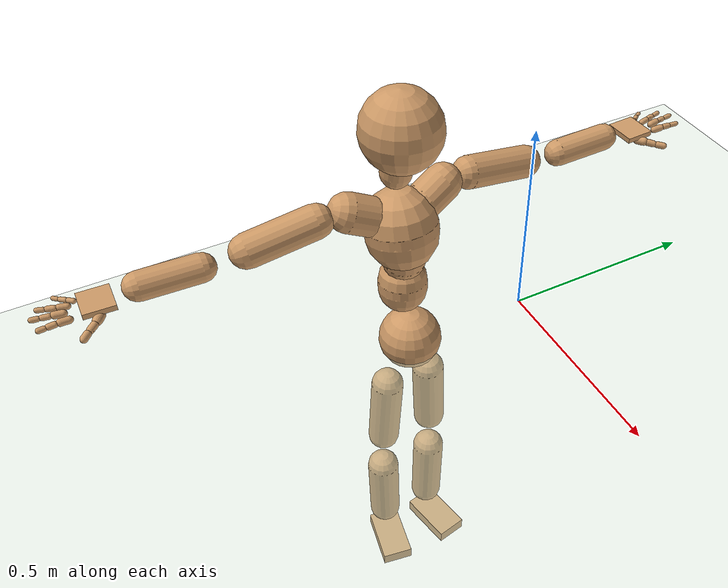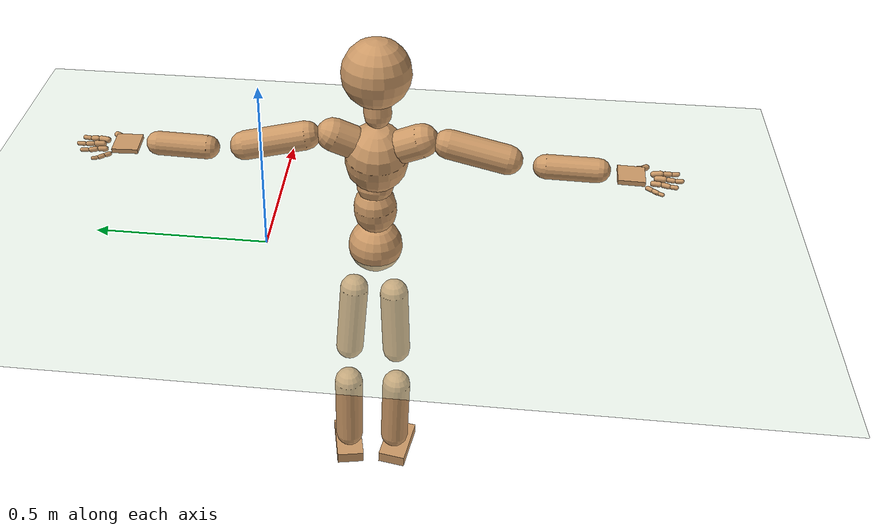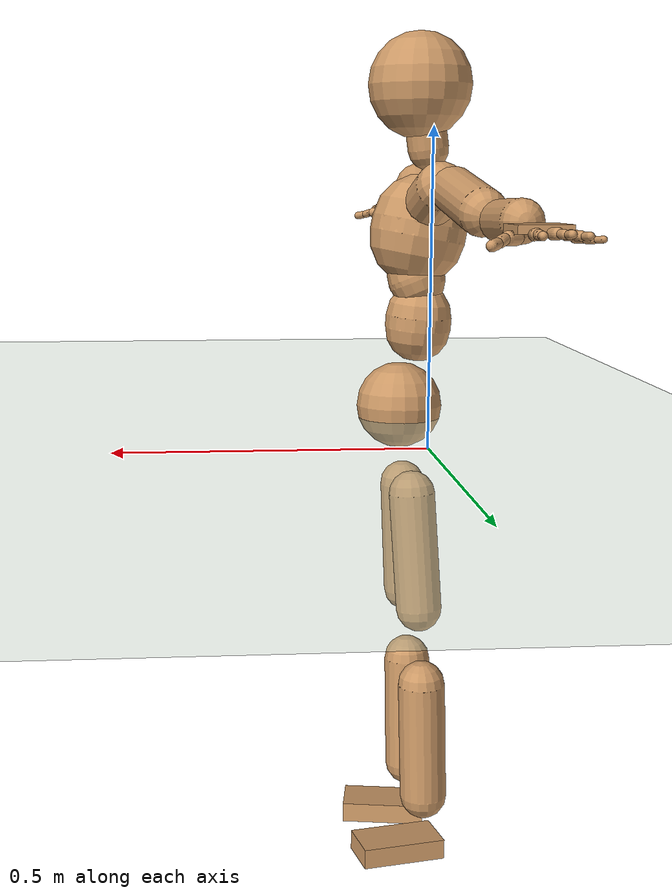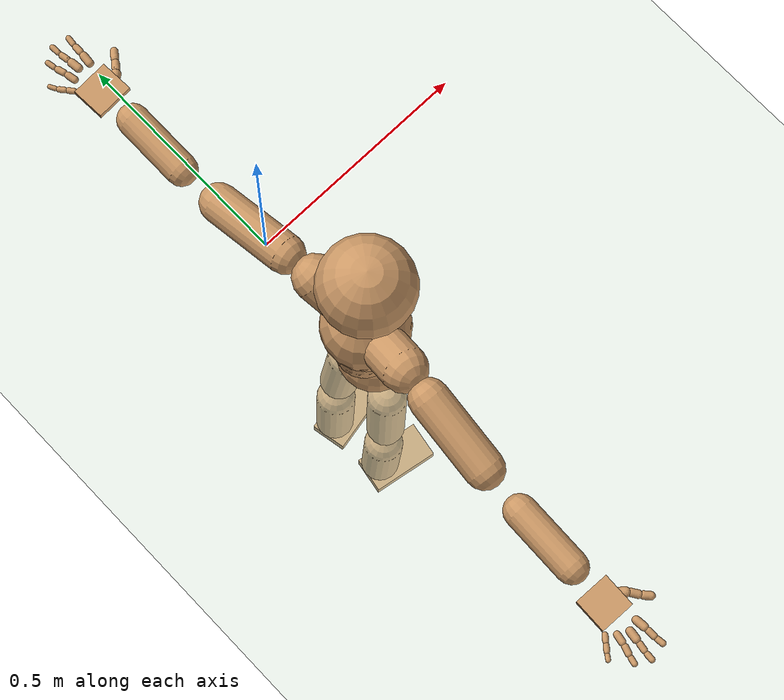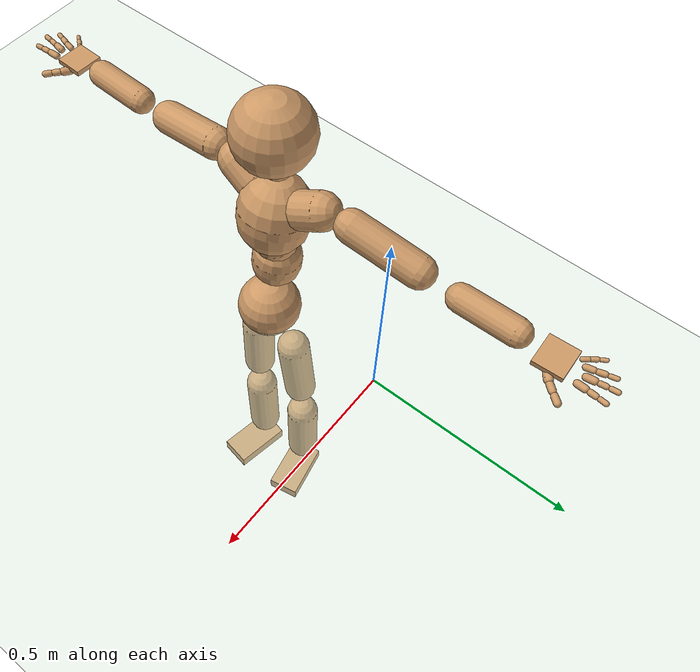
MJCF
<mujoco model="humanoid">
  <compiler coordinate="local" angle="radian"/>
  <default>
    <joint damping="0.0" armature="0.01" stiffness="0.0" limited="true"/>
    <geom conaffinity="1" condim="3" contype="7" margin="0.001" rgba="0.8 0.6 .4 1"/>
  </default>
  <asset>
    <texture type="skybox" builtin="gradient" rgb1=".4 .5 .6" rgb2="0 0 0" width="100" height="100"/>
    <texture builtin="flat" height="1278" mark="cross" markrgb="1 1 1" name="texgeom" random="0.01" rgb1="0.8 0.6 0.4" rgb2="0.8 0.6 0.4" type="cube" width="127"/>
    <texture builtin="checker" height="100" name="texplane" rgb1="0 0 0" rgb2="0.8 0.8 0.8" type="2d" width="100"/>
    <material name="MatPlane" reflectance="0.5" shininess="1" specular="1" texrepeat="60 60" texture="texplane"/>
    <material name="geom" texture="texgeom" texuniform="true"/>
  </asset>
  <worldbody>
    <light cutoff="100" diffuse="1 1 1" dir="-0 0 -1.3" directional="true" exponent="1" pos="0 0 1.3" specular=".1 .1 .1"/>
    <geom conaffinity="1" condim="3" name="floor" pos="0 0 0" rgba="0.8 0.9 0.8 1" size="100 100 .2" type="plane" material="MatPlane"/>
    <body name="Pelvis" pos="-0.0003 -0.3138 0.0203">
      <freejoint name="Pelvis"/>
      <geom type="sphere" contype="1" conaffinity="1" density="500" size="0.0767" pos="0.0000 0.0000 0.0000" name="Pelvis"/>
      <body name="L_Hip" pos="-0.0119 0.0552 -0.081">
        <joint name="L_Hip_x" type="hinge" pos="0 0 0" axis="1 0 0" stiffness="800" damping="80" armature="0.02" range="-180.0000 180.0000"/>
        <joint name="L_Hip_y" type="hinge" pos="0 0 0" axis="0 1 0" stiffness="800" damping="80" armature="0.02" range="-180.0000 180.0000"/>
        <joint name="L_Hip_z" type="hinge" pos="0 0 0" axis="0 0 1" stiffness="800" damping="80" armature="0.02" range="-180.0000 180.0000"/>
        <geom type="capsule" contype="1" conaffinity="1" density="500" fromto="-0.0048 0.0037 -0.0707 -0.0191 0.0149 -0.2826" size="0.0409" name="L_Hip"/>
        <body name="L_Knee" pos="-0.0238 0.0186 -0.3533">
          <joint name="L_Knee_x" type="hinge" pos="0 0 0" axis="1 0 0" stiffness="800" damping="80" armature="0.02" range="-180.0000 180.0000"/>
          <joint name="L_Knee_y" type="hinge" pos="0 0 0" axis="0 1 0" stiffness="800" damping="80" armature="0.02" range="-180.0000 180.0000"/>
          <joint name="L_Knee_z" type="hinge" pos="0 0 0" axis="0 0 1" stiffness="800" damping="80" armature="0.02" range="-180.0000 180.0000"/>
          <geom type="capsule" contype="1" conaffinity="1" density="500" fromto="-0.0025 -0.0012 -0.0731 -0.0099 -0.0046 -0.2924" size="0.0427" name="L_Knee"/>
          <body name="L_Ankle" pos="-0.0124 -0.0058 -0.3655">
            <joint name="L_Ankle_x" type="hinge" pos="0 0 0" axis="1 0 0" stiffness="800" damping="80" armature="0.02" range="-180.0000 180.0000"/>
            <joint name="L_Ankle_y" type="hinge" pos="0 0 0" axis="0 1 0" stiffness="800" damping="80" armature="0.02" range="-180.0000 180.0000"/>
            <joint name="L_Ankle_z" type="hinge" pos="0 0 0" axis="0 0 1" stiffness="800" damping="80" armature="0.02" range="-180.0000 180.0000"/>
            <geom type="box" contype="1" conaffinity="1" density="500" pos="0.0506 0.0099 -0.0210" size="0.0772 0.0418 0.0182" quat="0.9953 0.0000 0.0000 0.0970" name="L_Ankle"/>
            <body name="L_Toe" pos="0.1011 0.0199 -0.042">
              <joint name="L_Toe_x" type="hinge" pos="0 0 0" axis="1 0 0" stiffness="500" damping="50" armature="0.02" range="-180.0000 180.0000"/>
              <joint name="L_Toe_y" type="hinge" pos="0 0 0" axis="0 1 0" stiffness="500" damping="50" armature="0.02" range="-180.0000 180.0000"/>
              <joint name="L_Toe_z" type="hinge" pos="0 0 0" axis="0 0 1" stiffness="500" damping="50" armature="0.02" range="-180.0000 180.0000"/>
              <geom type="box" contype="1" conaffinity="1" density="500" pos="0.0000 0.0000 0.0221" size="0.0008 0.0021 0.001" quat="0.9945 0.0000 0.0000 0.1044" name="L_Toe"/>
            </body>
          </body>
        </body>
      </body>
      <body name="R_Hip" pos="-0.0137 -0.0534 -0.0875">
        <joint name="R_Hip_x" type="hinge" pos="0 0 0" axis="1 0 0" stiffness="800" damping="80" armature="0.02" range="-180.0000 180.0000"/>
        <joint name="R_Hip_y" type="hinge" pos="0 0 0" axis="0 1 0" stiffness="800" damping="80" armature="0.02" range="-180.0000 180.0000"/>
        <joint name="R_Hip_z" type="hinge" pos="0 0 0" axis="0 0 1" stiffness="800" damping="80" armature="0.02" range="-180.0000 180.0000"/>
        <geom type="capsule" contype="1" conaffinity="1" density="500" fromto="-0.0037 -0.0043 -0.0698 -0.0149 -0.0171 -0.2791" size="0.0406" name="R_Hip"/>
        <body name="R_Knee" pos="-0.0187 -0.0214 -0.3489">
          <joint name="R_Knee_x" type="hinge" pos="0 0 0" axis="1 0 0" stiffness="800" damping="80" armature="0.02" range="-180.0000 180.0000"/>
          <joint name="R_Knee_y" type="hinge" pos="0 0 0" axis="0 1 0" stiffness="800" damping="80" armature="0.02" range="-180.0000 180.0000"/>
          <joint name="R_Knee_z" type="hinge" pos="0 0 0" axis="0 0 1" stiffness="800" damping="80" armature="0.02" range="-180.0000 180.0000"/>
          <geom type="capsule" contype="1" conaffinity="1" density="500" fromto="-0.0016 0.0003 -0.0715 -0.0063 0.0013 -0.2859" size="0.0427" name="R_Knee"/>
          <body name="R_Ankle" pos="-0.0079 0.0017 -0.3574">
            <joint name="R_Ankle_x" type="hinge" pos="0 0 0" axis="1 0 0" stiffness="800" damping="80" armature="0.02" range="-180.0000 180.0000"/>
            <joint name="R_Ankle_y" type="hinge" pos="0 0 0" axis="0 1 0" stiffness="800" damping="80" armature="0.02" range="-180.0000 180.0000"/>
            <joint name="R_Ankle_z" type="hinge" pos="0 0 0" axis="0 0 1" stiffness="800" damping="80" armature="0.02" range="-180.0000 180.0000"/>
            <geom type="box" contype="1" conaffinity="1" density="500" pos="0.0475 -0.0082 -0.0230" size="0.0772 0.0418 0.0182" quat="0.9964 0.0000 0.0000 -0.0853" name="R_Ankle"/>
            <body name="R_Toe" pos="0.095 -0.0164 -0.046">
              <joint name="R_Toe_x" type="hinge" pos="0 0 0" axis="1 0 0" stiffness="500" damping="50" armature="0.02" range="-180.0000 180.0000"/>
              <joint name="R_Toe_y" type="hinge" pos="0 0 0" axis="0 1 0" stiffness="500" damping="50" armature="0.02" range="-180.0000 180.0000"/>
              <joint name="R_Toe_z" type="hinge" pos="0 0 0" axis="0 0 1" stiffness="500" damping="50" armature="0.02" range="-180.0000 180.0000"/>
              <geom type="box" contype="1" conaffinity="1" density="500" pos="0.0000 0.0000 0.0241" size="0.0008 0.0021 0.001" quat="0.9973 0.0000 0.0000 -0.0736" name="R_Toe"/>
            </body>
          </body>
        </body>
      </body>
      <body name="Torso" pos="-0.0287 -0.0041 0.0903">
        <joint name="Torso_x" type="hinge" pos="0 0 0" axis="1 0 0" stiffness="1000" damping="100" armature="0.02" range="-180.0000 180.0000"/>
        <joint name="Torso_y" type="hinge" pos="0 0 0" axis="0 1 0" stiffness="1000" damping="100" armature="0.02" range="-180.0000 180.0000"/>
        <joint name="Torso_z" type="hinge" pos="0 0 0" axis="0 0 1" stiffness="1000" damping="100" armature="0.02" range="-180.0000 180.0000"/>
        <geom type="capsule" contype="1" conaffinity="1" density="500" fromto="-0.0045 0.0042 0.0700 -0.0030 0.0028 0.0467" size="0.0585" name="Torso"/>
        <body name="Spine" pos="-0.0075 0.007 0.1167">
          <joint name="Spine_x" type="hinge" pos="0 0 0" axis="1 0 0" stiffness="1000" damping="100" armature="0.02" range="-180.0000 180.0000"/>
          <joint name="Spine_y" type="hinge" pos="0 0 0" axis="0 1 0" stiffness="1000" damping="100" armature="0.02" range="-180.0000 180.0000"/>
          <joint name="Spine_z" type="hinge" pos="0 0 0" axis="0 0 1" stiffness="1000" damping="100" armature="0.02" range="-180.0000 180.0000"/>
          <geom type="capsule" contype="1" conaffinity="1" density="500" fromto="0.0105 -0.0020 0.0255 0.0070 -0.0013 0.0170" size="0.0508" name="Spine"/>
          <body name="Chest" pos="0.0175 -0.0033 0.0424">
            <joint name="Chest_x" type="hinge" pos="0 0 0" axis="1 0 0" stiffness="1000" damping="100" armature="0.02" range="-180.0000 180.0000"/>
            <joint name="Chest_y" type="hinge" pos="0 0 0" axis="0 1 0" stiffness="1000" damping="100" armature="0.02" range="-180.0000 180.0000"/>
            <joint name="Chest_z" type="hinge" pos="0 0 0" axis="0 0 1" stiffness="1000" damping="100" armature="0.02" range="-180.0000 180.0000"/>
            <geom type="capsule" contype="1" conaffinity="1" density="500" fromto="-0.0144 -0.0014 0.0753 -0.0096 -0.0010 0.0502" size="0.0846" name="Chest"/>
            <body name="Neck" pos="-0.0314 -0.005 0.174">
              <joint name="Neck_x" type="hinge" pos="0 0 0" axis="1 0 0" stiffness="500" damping="50" armature="0.02" range="-180.0000 180.0000"/>
              <joint name="Neck_y" type="hinge" pos="0 0 0" axis="0 1 0" stiffness="500" damping="50" armature="0.02" range="-180.0000 180.0000"/>
              <joint name="Neck_z" type="hinge" pos="0 0 0" axis="0 0 1" stiffness="500" damping="50" armature="0.02" range="-180.0000 180.0000"/>
              <geom type="capsule" contype="1" conaffinity="1" density="500" fromto="0.0043 0.0016 0.0271 0.0172 0.0065 0.1083" size="0.0362" name="Neck"/>
              <body name="Head" pos="0.0215 0.0081 0.1353">
                <joint name="Head_x" type="hinge" pos="0 0 0" axis="1 0 0" stiffness="500" damping="50" armature="0.02" range="-180.0000 180.0000"/>
                <joint name="Head_y" type="hinge" pos="0 0 0" axis="0 1 0" stiffness="500" damping="50" armature="0.02" range="-180.0000 180.0000"/>
                <joint name="Head_z" type="hinge" pos="0 0 0" axis="0 0 1" stiffness="500" damping="50" armature="0.02" range="-180.0000 180.0000"/>
                <geom type="sphere" contype="1" conaffinity="1" density="500" size="0.0910" pos="0.0000 0.0000 0.0000" name="Head"/>
              </body>
            </body>
            <body name="L_Thorax" pos="-0.0176 0.0466 0.1027">
              <joint name="L_Thorax_x" type="hinge" pos="0 0 0" axis="1 0 0" stiffness="500" damping="50" armature="0.02" range="-180.0000 180.0000"/>
              <joint name="L_Thorax_y" type="hinge" pos="0 0 0" axis="0 1 0" stiffness="500" damping="50" armature="0.02" range="-180.0000 180.0000"/>
              <joint name="L_Thorax_z" type="hinge" pos="0 0 0" axis="0 0 1" stiffness="500" damping="50" armature="0.02" range="-180.0000 180.0000"/>
              <geom type="capsule" contype="1" conaffinity="1" density="500" fromto="-0.0032 0.0162 0.0082 -0.0127 0.0650 0.0327" size="0.044" name="L_Thorax"/>
              <body name="L_Shoulder" pos="-0.0159 0.0812 0.0409">
                <joint name="L_Shoulder_x" type="hinge" pos="0 0 0" axis="1 0 0" stiffness="500" damping="50" armature="0.02" range="-180.0000 180.0000"/>
                <joint name="L_Shoulder_y" type="hinge" pos="0 0 0" axis="0 1 0" stiffness="500" damping="50" armature="0.02" range="-180.0000 180.0000"/>
                <joint name="L_Shoulder_z" type="hinge" pos="0 0 0" axis="0 0 1" stiffness="500" damping="50" armature="0.02" range="-180.0000 180.0000"/>
                <geom type="capsule" contype="1" conaffinity="1" density="500" fromto="-0.0052 0.0535 -0.0107 -0.0206 0.2141 -0.0430" size="0.0382" name="L_Shoulder"/>
                <body name="L_Elbow" pos="-0.0258 0.2676 -0.0537">
                  <joint name="L_Elbow_x" type="hinge" pos="0 0 0" axis="1 0 0" stiffness="500" damping="50" armature="0.02" range="-720.0000 720.0000"/>
                  <joint name="L_Elbow_y" type="hinge" pos="0 0 0" axis="0 1 0" stiffness="500" damping="50" armature="0.02" range="-720.0000 720.0000"/>
                  <joint name="L_Elbow_z" type="hinge" pos="0 0 0" axis="0 0 1" stiffness="500" damping="50" armature="0.02" range="-720.0000 720.0000"/>
                  <geom type="capsule" contype="1" conaffinity="1" density="500" fromto="0.0000 0.0439 0.0011 0.0000 0.1757 0.0045" size="0.0314" name="L_Elbow"/>
                  <body name="L_Wrist" pos="0 0.2196 0.0056">
                    <joint name="L_Wrist_x" type="hinge" pos="0 0 0" axis="1 0 0" stiffness="300" damping="30" armature="0.02" range="-180.0000 180.0000"/>
                    <joint name="L_Wrist_y" type="hinge" pos="0 0 0" axis="0 1 0" stiffness="300" damping="30" armature="0.02" range="-180.0000 180.0000"/>
                    <joint name="L_Wrist_z" type="hinge" pos="0 0 0" axis="0 0 1" stiffness="300" damping="30" armature="0.02" range="-180.0000 180.0000"/>
                    <geom type="box" contype="1" conaffinity="1" density="500" pos="-0.0020 0.0399 -0.0080" size="0.0342 0.038 0.0061" quat="0.7249 0.0000 0.0000 -0.6889" name="L_Wrist"/>
                    <body name="L_Index1" pos="0.0179 0.0935 -0.014">
                      <joint name="L_Index1_x" type="hinge" pos="0 0 0" axis="1 0 0" stiffness="100" damping="10" armature="0.02" range="-180.0000 180.0000"/>
                      <joint name="L_Index1_y" type="hinge" pos="0 0 0" axis="0 1 0" stiffness="100" damping="10" armature="0.02" range="-180.0000 180.0000"/>
                      <joint name="L_Index1_z" type="hinge" pos="0 0 0" axis="0 0 1" stiffness="100" damping="10" armature="0.02" range="-180.0000 180.0000"/>
                      <geom type="capsule" contype="1" conaffinity="1" density="500" fromto="0.0005 0.0059 0.0005 0.0020 0.0237 0.0019" size="0.008" name="L_Index1"/>
                      <body name="L_Index2" pos="0.0025 0.0297 0.0024">
                        <joint name="L_Index2_x" type="hinge" pos="0 0 0" axis="1 0 0" stiffness="100" damping="10" armature="0.02" range="-180.0000 180.0000"/>
                        <joint name="L_Index2_y" type="hinge" pos="0 0 0" axis="0 1 0" stiffness="100" damping="10" armature="0.02" range="-180.0000 180.0000"/>
                        <joint name="L_Index2_z" type="hinge" pos="0 0 0" axis="0 0 1" stiffness="100" damping="10" armature="0.02" range="-180.0000 180.0000"/>
                        <geom type="capsule" contype="1" conaffinity="1" density="500" fromto="0.0001 0.0042 -0.0003 0.0004 0.0169 -0.0011" size="0.0067" name="L_Index2"/>
                        <body name="L_Index3" pos="0.0005 0.0211 -0.0013">
                          <joint name="L_Index3_x" type="hinge" pos="0 0 0" axis="1 0 0" stiffness="100" damping="10" armature="0.02" range="-180.0000 180.0000"/>
                          <joint name="L_Index3_y" type="hinge" pos="0 0 0" axis="0 1 0" stiffness="100" damping="10" armature="0.02" range="-180.0000 180.0000"/>
                          <joint name="L_Index3_z" type="hinge" pos="0 0 0" axis="0 0 1" stiffness="100" damping="10" armature="0.02" range="-180.0000 180.0000"/>
                          <geom type="capsule" contype="1" conaffinity="1" density="500" fromto="0.0005 0.0046 0.0001 0.0020 0.0185 0.0005" size="0.0057" name="L_Index3"/>
                        </body>
                      </body>
                    </body>
                    <body name="L_Middle1" pos="-0.0026 0.1 -0.0122">
                      <joint name="L_Middle1_x" type="hinge" pos="0 0 0" axis="1 0 0" stiffness="100" damping="10" armature="0.02" range="-180.0000 180.0000"/>
                      <joint name="L_Middle1_y" type="hinge" pos="0 0 0" axis="0 1 0" stiffness="100" damping="10" armature="0.02" range="-180.0000 180.0000"/>
                      <joint name="L_Middle1_z" type="hinge" pos="0 0 0" axis="0 0 1" stiffness="100" damping="10" armature="0.02" range="-180.0000 180.0000"/>
                      <geom type="capsule" contype="1" conaffinity="1" density="500" fromto="-0.0008 0.0056 0.0002 -0.0031 0.0225 0.0009" size="0.0081" name="L_Middle1"/>
                      <body name="L_Middle2" pos="-0.0038 0.0281 0.0011">
                        <joint name="L_Middle2_x" type="hinge" pos="0 0 0" axis="1 0 0" stiffness="100" damping="10" armature="0.02" range="-180.0000 180.0000"/>
                        <joint name="L_Middle2_y" type="hinge" pos="0 0 0" axis="0 1 0" stiffness="100" damping="10" armature="0.02" range="-180.0000 180.0000"/>
                        <joint name="L_Middle2_z" type="hinge" pos="0 0 0" axis="0 0 1" stiffness="100" damping="10" armature="0.02" range="-180.0000 180.0000"/>
                        <geom type="capsule" contype="1" conaffinity="1" density="500" fromto="-0.0007 0.0044 -0.0001 -0.0029 0.0175 -0.0004" size="0.0062" name="L_Middle2"/>
                        <body name="L_Middle3" pos="-0.0036 0.0219 -0.0005">
                          <joint name="L_Middle3_x" type="hinge" pos="0 0 0" axis="1 0 0" stiffness="100" damping="10" armature="0.02" range="-180.0000 180.0000"/>
                          <joint name="L_Middle3_y" type="hinge" pos="0 0 0" axis="0 1 0" stiffness="100" damping="10" armature="0.02" range="-180.0000 180.0000"/>
                          <joint name="L_Middle3_z" type="hinge" pos="0 0 0" axis="0 0 1" stiffness="100" damping="10" armature="0.02" range="-180.0000 180.0000"/>
                          <geom type="capsule" contype="1" conaffinity="1" density="500" fromto="-0.0003 0.0048 0.0003 -0.0013 0.0191 0.0012" size="0.0056" name="L_Middle3"/>
                        </body>
                      </body>
                    </body>
                    <body name="L_Pinky1" pos="-0.0364 0.0773 -0.0192">
                      <joint name="L_Pinky1_x" type="hinge" pos="0 0 0" axis="1 0 0" stiffness="100" damping="10" armature="0.02" range="-180.0000 180.0000"/>
                      <joint name="L_Pinky1_y" type="hinge" pos="0 0 0" axis="0 1 0" stiffness="100" damping="10" armature="0.02" range="-180.0000 180.0000"/>
                      <joint name="L_Pinky1_z" type="hinge" pos="0 0 0" axis="0 0 1" stiffness="100" damping="10" armature="0.02" range="-180.0000 180.0000"/>
                      <geom type="capsule" contype="1" conaffinity="1" density="500" fromto="-0.0022 0.0027 -0.0000 -0.0089 0.0110 -0.0001" size="0.0058" name="L_Pinky1"/>
                      <body name="L_Pinky2" pos="-0.0111 0.0137 -0.0001">
                        <joint name="L_Pinky2_x" type="hinge" pos="0 0 0" axis="1 0 0" stiffness="100" damping="10" armature="0.02" range="-180.0000 180.0000"/>
                        <joint name="L_Pinky2_y" type="hinge" pos="0 0 0" axis="0 1 0" stiffness="100" damping="10" armature="0.02" range="-180.0000 180.0000"/>
                        <joint name="L_Pinky2_z" type="hinge" pos="0 0 0" axis="0 0 1" stiffness="100" damping="10" armature="0.02" range="-180.0000 180.0000"/>
                        <geom type="capsule" contype="1" conaffinity="1" density="500" fromto="-0.0022 0.0028 -0.0001 -0.0087 0.0111 -0.0005" size="0.0057" name="L_Pinky2"/>
                        <body name="L_Pinky3" pos="-0.0109 0.0139 -0.0006">
                          <joint name="L_Pinky3_x" type="hinge" pos="0 0 0" axis="1 0 0" stiffness="100" damping="10" armature="0.02" range="-180.0000 180.0000"/>
                          <joint name="L_Pinky3_y" type="hinge" pos="0 0 0" axis="0 1 0" stiffness="100" damping="10" armature="0.02" range="-180.0000 180.0000"/>
                          <joint name="L_Pinky3_z" type="hinge" pos="0 0 0" axis="0 0 1" stiffness="100" damping="10" armature="0.02" range="-180.0000 180.0000"/>
                          <geom type="capsule" contype="1" conaffinity="1" density="500" fromto="-0.0018 0.0032 0.0003 -0.0071 0.0127 0.0011" size="0.0046" name="L_Pinky3"/>
                        </body>
                      </body>
                    </body>
                    <body name="L_Ring1" pos="-0.0225 0.089 -0.0147">
                      <joint name="L_Ring1_x" type="hinge" pos="0 0 0" axis="1 0 0" stiffness="100" damping="10" armature="0.02" range="-180.0000 180.0000"/>
                      <joint name="L_Ring1_y" type="hinge" pos="0 0 0" axis="0 1 0" stiffness="100" damping="10" armature="0.02" range="-180.0000 180.0000"/>
                      <joint name="L_Ring1_z" type="hinge" pos="0 0 0" axis="0 0 1" stiffness="100" damping="10" armature="0.02" range="-180.0000 180.0000"/>
                      <geom type="capsule" contype="1" conaffinity="1" density="500" fromto="-0.0010 0.0050 0.0003 -0.0041 0.0202 0.0012" size="0.007" name="L_Ring1"/>
                      <body name="L_Ring2" pos="-0.0051 0.0252 0.0015">
                        <joint name="L_Ring2_x" type="hinge" pos="0 0 0" axis="1 0 0" stiffness="100" damping="10" armature="0.02" range="-180.0000 180.0000"/>
                        <joint name="L_Ring2_y" type="hinge" pos="0 0 0" axis="0 1 0" stiffness="100" damping="10" armature="0.02" range="-180.0000 180.0000"/>
                        <joint name="L_Ring2_z" type="hinge" pos="0 0 0" axis="0 0 1" stiffness="100" damping="10" armature="0.02" range="-180.0000 180.0000"/>
                        <geom type="capsule" contype="1" conaffinity="1" density="500" fromto="-0.0013 0.0042 -0.0002 -0.0053 0.0167 -0.0006" size="0.0066" name="L_Ring2"/>
                        <body name="L_Ring3" pos="-0.0066 0.0209 -0.0008">
                          <joint name="L_Ring3_x" type="hinge" pos="0 0 0" axis="1 0 0" stiffness="100" damping="10" armature="0.02" range="-180.0000 180.0000"/>
                          <joint name="L_Ring3_y" type="hinge" pos="0 0 0" axis="0 1 0" stiffness="100" damping="10" armature="0.02" range="-180.0000 180.0000"/>
                          <joint name="L_Ring3_z" type="hinge" pos="0 0 0" axis="0 0 1" stiffness="100" damping="10" armature="0.02" range="-180.0000 180.0000"/>
                          <geom type="capsule" contype="1" conaffinity="1" density="500" fromto="-0.0009 0.0046 0.0002 -0.0037 0.0183 0.0010" size="0.0053" name="L_Ring3"/>
                        </body>
                      </body>
                    </body>
                    <body name="L_Thumb1" pos="0.0232 0.0393 -0.0198">
                      <joint name="L_Thumb1_x" type="hinge" pos="0 0 0" axis="1 0 0" stiffness="100" damping="10" armature="0.02" range="-180.0000 180.0000"/>
                      <joint name="L_Thumb1_y" type="hinge" pos="0 0 0" axis="0 1 0" stiffness="100" damping="10" armature="0.02" range="-180.0000 180.0000"/>
                      <joint name="L_Thumb1_z" type="hinge" pos="0 0 0" axis="0 0 1" stiffness="100" damping="10" armature="0.02" range="-180.0000 180.0000"/>
                      <geom type="capsule" contype="1" conaffinity="1" density="500" fromto="0.0043 0.0032 0.0000 0.0172 0.0127 0.0000" size="0.0102" name="L_Thumb1"/>
                      <body name="L_Thumb2" pos="0.0215 0.0159 0.0001">
                        <joint name="L_Thumb2_x" type="hinge" pos="0 0 0" axis="1 0 0" stiffness="100" damping="10" armature="0.02" range="-180.0000 180.0000"/>
                        <joint name="L_Thumb2_y" type="hinge" pos="0 0 0" axis="0 1 0" stiffness="100" damping="10" armature="0.02" range="-180.0000 180.0000"/>
                        <joint name="L_Thumb2_z" type="hinge" pos="0 0 0" axis="0 0 1" stiffness="100" damping="10" armature="0.02" range="-180.0000 180.0000"/>
                        <geom type="capsule" contype="1" conaffinity="1" density="500" fromto="0.0026 0.0038 -0.0010 0.0106 0.0151 -0.0042" size="0.008" name="L_Thumb2"/>
                        <body name="L_Thumb3" pos="0.0132 0.0189 -0.0052">
                          <joint name="L_Thumb3_x" type="hinge" pos="0 0 0" axis="1 0 0" stiffness="100" damping="10" armature="0.02" range="-180.0000 180.0000"/>
                          <joint name="L_Thumb3_y" type="hinge" pos="0 0 0" axis="0 1 0" stiffness="100" damping="10" armature="0.02" range="-180.0000 180.0000"/>
                          <joint name="L_Thumb3_z" type="hinge" pos="0 0 0" axis="0 0 1" stiffness="100" damping="10" armature="0.02" range="-180.0000 180.0000"/>
                          <geom type="capsule" contype="1" conaffinity="1" density="500" fromto="0.0030 0.0042 -0.0006 0.0122 0.0167 -0.0026" size="0.0078" name="L_Thumb3"/>
                        </body>
                      </body>
                    </body>
                  </body>
                </body>
              </body>
            </body>
            <body name="R_Thorax" pos="-0.0228 -0.0488 0.0996">
              <joint name="R_Thorax_x" type="hinge" pos="0 0 0" axis="1 0 0" stiffness="500" damping="50" armature="0.02" range="-180.0000 180.0000"/>
              <joint name="R_Thorax_y" type="hinge" pos="0 0 0" axis="0 1 0" stiffness="500" damping="50" armature="0.02" range="-180.0000 180.0000"/>
              <joint name="R_Thorax_z" type="hinge" pos="0 0 0" axis="0 0 1" stiffness="500" damping="50" armature="0.02" range="-180.0000 180.0000"/>
              <geom type="capsule" contype="1" conaffinity="1" density="500" fromto="-0.0021 -0.0174 0.0085 -0.0084 -0.0696 0.0338" size="0.045" name="R_Thorax"/>
              <body name="R_Shoulder" pos="-0.0105 -0.087 0.0423">
                <joint name="R_Shoulder_x" type="hinge" pos="0 0 0" axis="1 0 0" stiffness="500" damping="50" armature="0.02" range="-180.0000 180.0000"/>
                <joint name="R_Shoulder_y" type="hinge" pos="0 0 0" axis="0 1 0" stiffness="500" damping="50" armature="0.02" range="-180.0000 180.0000"/>
                <joint name="R_Shoulder_z" type="hinge" pos="0 0 0" axis="0 0 1" stiffness="500" damping="50" armature="0.02" range="-180.0000 180.0000"/>
                <geom type="capsule" contype="1" conaffinity="1" density="500" fromto="-0.0039 -0.0516 -0.0097 -0.0157 -0.2065 -0.0388" size="0.0385" name="R_Shoulder"/>
                <body name="R_Elbow" pos="-0.0196 -0.2582 -0.0486">
                  <joint name="R_Elbow_x" type="hinge" pos="0 0 0" axis="1 0 0" stiffness="500" damping="50" armature="0.02" range="-720.0000 720.0000"/>
                  <joint name="R_Elbow_y" type="hinge" pos="0 0 0" axis="0 1 0" stiffness="500" damping="50" armature="0.02" range="-720.0000 720.0000"/>
                  <joint name="R_Elbow_z" type="hinge" pos="0 0 0" axis="0 0 1" stiffness="500" damping="50" armature="0.02" range="-720.0000 720.0000"/>
                  <geom type="capsule" contype="1" conaffinity="1" density="500" fromto="-0.0015 -0.0442 0.0003 -0.0059 -0.1766 0.0012" size="0.0317" name="R_Elbow"/>
                  <body name="R_Wrist" pos="-0.0074 -0.2208 0.0015">
                    <joint name="R_Wrist_x" type="hinge" pos="0 0 0" axis="1 0 0" stiffness="300" damping="30" armature="0.02" range="-180.0000 180.0000"/>
                    <joint name="R_Wrist_y" type="hinge" pos="0 0 0" axis="0 1 0" stiffness="300" damping="30" armature="0.02" range="-180.0000 180.0000"/>
                    <joint name="R_Wrist_z" type="hinge" pos="0 0 0" axis="0 0 1" stiffness="300" damping="30" armature="0.02" range="-180.0000 180.0000"/>
                    <geom type="box" contype="1" conaffinity="1" density="500" pos="-0.0015 -0.0394 -0.0077" size="0.0342 0.0354 0.0063" quat="0.7205 0.0000 0.0000 0.6934" name="R_Wrist"/>
                    <body name="R_Index1" pos="0.019 -0.0924 -0.0134">
                      <joint name="R_Index1_x" type="hinge" pos="0 0 0" axis="1 0 0" stiffness="100" damping="10" armature="0.02" range="-180.0000 180.0000"/>
                      <joint name="R_Index1_y" type="hinge" pos="0 0 0" axis="0 1 0" stiffness="100" damping="10" armature="0.02" range="-180.0000 180.0000"/>
                      <joint name="R_Index1_z" type="hinge" pos="0 0 0" axis="0 0 1" stiffness="100" damping="10" armature="0.02" range="-180.0000 180.0000"/>
                      <geom type="capsule" contype="1" conaffinity="1" density="500" fromto="0.0005 -0.0059 0.0005 0.0020 -0.0237 0.0019" size="0.008" name="R_Index1"/>
                      <body name="R_Index2" pos="0.0025 -0.0297 0.0024">
                        <joint name="R_Index2_x" type="hinge" pos="0 0 0" axis="1 0 0" stiffness="100" damping="10" armature="0.02" range="-180.0000 180.0000"/>
                        <joint name="R_Index2_y" type="hinge" pos="0 0 0" axis="0 1 0" stiffness="100" damping="10" armature="0.02" range="-180.0000 180.0000"/>
                        <joint name="R_Index2_z" type="hinge" pos="0 0 0" axis="0 0 1" stiffness="100" damping="10" armature="0.02" range="-180.0000 180.0000"/>
                        <geom type="capsule" contype="1" conaffinity="1" density="500" fromto="0.0001 -0.0042 -0.0003 0.0004 -0.0169 -0.0011" size="0.0067" name="R_Index2"/>
                        <body name="R_Index3" pos="0.0005 -0.0211 -0.0013">
                          <joint name="R_Index3_x" type="hinge" pos="0 0 0" axis="1 0 0" stiffness="100" damping="10" armature="0.02" range="-180.0000 180.0000"/>
                          <joint name="R_Index3_y" type="hinge" pos="0 0 0" axis="0 1 0" stiffness="100" damping="10" armature="0.02" range="-180.0000 180.0000"/>
                          <joint name="R_Index3_z" type="hinge" pos="0 0 0" axis="0 0 1" stiffness="100" damping="10" armature="0.02" range="-180.0000 180.0000"/>
                          <geom type="capsule" contype="1" conaffinity="1" density="500" fromto="0.0005 -0.0038 0.0001 0.0020 -0.0153 0.0005" size="0.006" name="R_Index3"/>
                        </body>
                      </body>
                    </body>
                    <body name="R_Middle1" pos="-0.0015 -0.0989 -0.0116">
                      <joint name="R_Middle1_x" type="hinge" pos="0 0 0" axis="1 0 0" stiffness="100" damping="10" armature="0.02" range="-180.0000 180.0000"/>
                      <joint name="R_Middle1_y" type="hinge" pos="0 0 0" axis="0 1 0" stiffness="100" damping="10" armature="0.02" range="-180.0000 180.0000"/>
                      <joint name="R_Middle1_z" type="hinge" pos="0 0 0" axis="0 0 1" stiffness="100" damping="10" armature="0.02" range="-180.0000 180.0000"/>
                      <geom type="capsule" contype="1" conaffinity="1" density="500" fromto="-0.0008 -0.0056 0.0002 -0.0031 -0.0225 0.0009" size="0.0081" name="R_Middle1"/>
                      <body name="R_Middle2" pos="-0.0038 -0.0281 0.0011">
                        <joint name="R_Middle2_x" type="hinge" pos="0 0 0" axis="1 0 0" stiffness="100" damping="10" armature="0.02" range="-180.0000 180.0000"/>
                        <joint name="R_Middle2_y" type="hinge" pos="0 0 0" axis="0 1 0" stiffness="100" damping="10" armature="0.02" range="-180.0000 180.0000"/>
                        <joint name="R_Middle2_z" type="hinge" pos="0 0 0" axis="0 0 1" stiffness="100" damping="10" armature="0.02" range="-180.0000 180.0000"/>
                        <geom type="capsule" contype="1" conaffinity="1" density="500" fromto="-0.0007 -0.0044 -0.0001 -0.0029 -0.0175 -0.0004" size="0.0062" name="R_Middle2"/>
                        <body name="R_Middle3" pos="-0.0036 -0.0219 -0.0005">
                          <joint name="R_Middle3_x" type="hinge" pos="0 0 0" axis="1 0 0" stiffness="100" damping="10" armature="0.02" range="-180.0000 180.0000"/>
                          <joint name="R_Middle3_y" type="hinge" pos="0 0 0" axis="0 1 0" stiffness="100" damping="10" armature="0.02" range="-180.0000 180.0000"/>
                          <joint name="R_Middle3_z" type="hinge" pos="0 0 0" axis="0 0 1" stiffness="100" damping="10" armature="0.02" range="-180.0000 180.0000"/>
                          <geom type="capsule" contype="1" conaffinity="1" density="500" fromto="-0.0003 -0.0040 0.0003 -0.0013 -0.0159 0.0012" size="0.0059" name="R_Middle3"/>
                        </body>
                      </body>
                    </body>
                    <body name="R_Pinky1" pos="-0.0354 -0.0762 -0.0185">
                      <joint name="R_Pinky1_x" type="hinge" pos="0 0 0" axis="1 0 0" stiffness="100" damping="10" armature="0.02" range="-180.0000 180.0000"/>
                      <joint name="R_Pinky1_y" type="hinge" pos="0 0 0" axis="0 1 0" stiffness="100" damping="10" armature="0.02" range="-180.0000 180.0000"/>
                      <joint name="R_Pinky1_z" type="hinge" pos="0 0 0" axis="0 0 1" stiffness="100" damping="10" armature="0.02" range="-180.0000 180.0000"/>
                      <geom type="capsule" contype="1" conaffinity="1" density="500" fromto="-0.0022 -0.0027 -0.0000 -0.0089 -0.0110 -0.0001" size="0.0058" name="R_Pinky1"/>
                      <body name="R_Pinky2" pos="-0.0111 -0.0137 -0.0001">
                        <joint name="R_Pinky2_x" type="hinge" pos="0 0 0" axis="1 0 0" stiffness="100" damping="10" armature="0.02" range="-180.0000 180.0000"/>
                        <joint name="R_Pinky2_y" type="hinge" pos="0 0 0" axis="0 1 0" stiffness="100" damping="10" armature="0.02" range="-180.0000 180.0000"/>
                        <joint name="R_Pinky2_z" type="hinge" pos="0 0 0" axis="0 0 1" stiffness="100" damping="10" armature="0.02" range="-180.0000 180.0000"/>
                        <geom type="capsule" contype="1" conaffinity="1" density="500" fromto="-0.0022 -0.0028 -0.0001 -0.0087 -0.0111 -0.0004" size="0.0057" name="R_Pinky2"/>
                        <body name="R_Pinky3" pos="-0.0109 -0.0139 -0.0006">
                          <joint name="R_Pinky3_x" type="hinge" pos="0 0 0" axis="1 0 0" stiffness="100" damping="10" armature="0.02" range="-180.0000 180.0000"/>
                          <joint name="R_Pinky3_y" type="hinge" pos="0 0 0" axis="0 1 0" stiffness="100" damping="10" armature="0.02" range="-180.0000 180.0000"/>
                          <joint name="R_Pinky3_z" type="hinge" pos="0 0 0" axis="0 0 1" stiffness="100" damping="10" armature="0.02" range="-180.0000 180.0000"/>
                          <geom type="capsule" contype="1" conaffinity="1" density="500" fromto="-0.0018 -0.0024 0.0003 -0.0071 -0.0095 0.0012" size="0.0048" name="R_Pinky3"/>
                        </body>
                      </body>
                    </body>
                    <body name="R_Ring1" pos="-0.0214 -0.088 -0.0141">
                      <joint name="R_Ring1_x" type="hinge" pos="0 0 0" axis="1 0 0" stiffness="100" damping="10" armature="0.02" range="-180.0000 180.0000"/>
                      <joint name="R_Ring1_y" type="hinge" pos="0 0 0" axis="0 1 0" stiffness="100" damping="10" armature="0.02" range="-180.0000 180.0000"/>
                      <joint name="R_Ring1_z" type="hinge" pos="0 0 0" axis="0 0 1" stiffness="100" damping="10" armature="0.02" range="-180.0000 180.0000"/>
                      <geom type="capsule" contype="1" conaffinity="1" density="500" fromto="-0.0010 -0.0050 0.0003 -0.0041 -0.0202 0.0012" size="0.007" name="R_Ring1"/>
                      <body name="R_Ring2" pos="-0.0051 -0.0252 0.0015">
                        <joint name="R_Ring2_x" type="hinge" pos="0 0 0" axis="1 0 0" stiffness="100" damping="10" armature="0.02" range="-180.0000 180.0000"/>
                        <joint name="R_Ring2_y" type="hinge" pos="0 0 0" axis="0 1 0" stiffness="100" damping="10" armature="0.02" range="-180.0000 180.0000"/>
                        <joint name="R_Ring2_z" type="hinge" pos="0 0 0" axis="0 0 1" stiffness="100" damping="10" armature="0.02" range="-180.0000 180.0000"/>
                        <geom type="capsule" contype="1" conaffinity="1" density="500" fromto="-0.0013 -0.0042 -0.0002 -0.0053 -0.0167 -0.0006" size="0.0066" name="R_Ring2"/>
                        <body name="R_Ring3" pos="-0.0066 -0.0209 -0.0008">
                          <joint name="R_Ring3_x" type="hinge" pos="0 0 0" axis="1 0 0" stiffness="100" damping="10" armature="0.02" range="-180.0000 180.0000"/>
                          <joint name="R_Ring3_y" type="hinge" pos="0 0 0" axis="0 1 0" stiffness="100" damping="10" armature="0.02" range="-180.0000 180.0000"/>
                          <joint name="R_Ring3_z" type="hinge" pos="0 0 0" axis="0 0 1" stiffness="100" damping="10" armature="0.02" range="-180.0000 180.0000"/>
                          <geom type="capsule" contype="1" conaffinity="1" density="500" fromto="-0.0009 -0.0038 0.0002 -0.0037 -0.0151 0.0010" size="0.0056" name="R_Ring3"/>
                        </body>
                      </body>
                    </body>
                    <body name="R_Thumb1" pos="0.0242 -0.0382 -0.0191">
                      <joint name="R_Thumb1_x" type="hinge" pos="0 0 0" axis="1 0 0" stiffness="100" damping="10" armature="0.02" range="-180.0000 180.0000"/>
                      <joint name="R_Thumb1_y" type="hinge" pos="0 0 0" axis="0 1 0" stiffness="100" damping="10" armature="0.02" range="-180.0000 180.0000"/>
                      <joint name="R_Thumb1_z" type="hinge" pos="0 0 0" axis="0 0 1" stiffness="100" damping="10" armature="0.02" range="-180.0000 180.0000"/>
                      <geom type="capsule" contype="1" conaffinity="1" density="500" fromto="0.0043 -0.0032 0.0000 0.0172 -0.0127 0.0000" size="0.0102" name="R_Thumb1"/>
                      <body name="R_Thumb2" pos="0.0215 -0.0159 0.0001">
                        <joint name="R_Thumb2_x" type="hinge" pos="0 0 0" axis="1 0 0" stiffness="100" damping="10" armature="0.02" range="-180.0000 180.0000"/>
                        <joint name="R_Thumb2_y" type="hinge" pos="0 0 0" axis="0 1 0" stiffness="100" damping="10" armature="0.02" range="-180.0000 180.0000"/>
                        <joint name="R_Thumb2_z" type="hinge" pos="0 0 0" axis="0 0 1" stiffness="100" damping="10" armature="0.02" range="-180.0000 180.0000"/>
                        <geom type="capsule" contype="1" conaffinity="1" density="500" fromto="0.0026 -0.0038 -0.0010 0.0106 -0.0151 -0.0042" size="0.008" name="R_Thumb2"/>
                        <body name="R_Thumb3" pos="0.0132 -0.0189 -0.0052">
                          <joint name="R_Thumb3_x" type="hinge" pos="0 0 0" axis="1 0 0" stiffness="100" damping="10" armature="0.02" range="-180.0000 180.0000"/>
                          <joint name="R_Thumb3_y" type="hinge" pos="0 0 0" axis="0 1 0" stiffness="100" damping="10" armature="0.02" range="-180.0000 180.0000"/>
                          <joint name="R_Thumb3_z" type="hinge" pos="0 0 0" axis="0 0 1" stiffness="100" damping="10" armature="0.02" range="-180.0000 180.0000"/>
                          <geom type="capsule" contype="1" conaffinity="1" density="500" fromto="0.0030 -0.0034 -0.0006 0.0122 -0.0135 -0.0026" size="0.008" name="R_Thumb3"/>
                        </body>
                      </body>
                    </body>
                  </body>
                </body>
              </body>
            </body>
          </body>
        </body>
      </body>
    </body>
  </worldbody>
  <actuator>
    <motor name="L_Hip_x" joint="L_Hip_x" gear="500"/>
    <motor name="L_Hip_y" joint="L_Hip_y" gear="500"/>
    <motor name="L_Hip_z" joint="L_Hip_z" gear="500"/>
    <motor name="L_Knee_x" joint="L_Knee_x" gear="500"/>
    <motor name="L_Knee_y" joint="L_Knee_y" gear="500"/>
    <motor name="L_Knee_z" joint="L_Knee_z" gear="500"/>
    <motor name="L_Ankle_x" joint="L_Ankle_x" gear="500"/>
    <motor name="L_Ankle_y" joint="L_Ankle_y" gear="500"/>
    <motor name="L_Ankle_z" joint="L_Ankle_z" gear="500"/>
    <motor name="L_Toe_x" joint="L_Toe_x" gear="500"/>
    <motor name="L_Toe_y" joint="L_Toe_y" gear="500"/>
    <motor name="L_Toe_z" joint="L_Toe_z" gear="500"/>
    <motor name="R_Hip_x" joint="R_Hip_x" gear="500"/>
    <motor name="R_Hip_y" joint="R_Hip_y" gear="500"/>
    <motor name="R_Hip_z" joint="R_Hip_z" gear="500"/>
    <motor name="R_Knee_x" joint="R_Knee_x" gear="500"/>
    <motor name="R_Knee_y" joint="R_Knee_y" gear="500"/>
    <motor name="R_Knee_z" joint="R_Knee_z" gear="500"/>
    <motor name="R_Ankle_x" joint="R_Ankle_x" gear="500"/>
    <motor name="R_Ankle_y" joint="R_Ankle_y" gear="500"/>
    <motor name="R_Ankle_z" joint="R_Ankle_z" gear="500"/>
    <motor name="R_Toe_x" joint="R_Toe_x" gear="500"/>
    <motor name="R_Toe_y" joint="R_Toe_y" gear="500"/>
    <motor name="R_Toe_z" joint="R_Toe_z" gear="500"/>
    <motor name="Torso_x" joint="Torso_x" gear="500"/>
    <motor name="Torso_y" joint="Torso_y" gear="500"/>
    <motor name="Torso_z" joint="Torso_z" gear="500"/>
    <motor name="Spine_x" joint="Spine_x" gear="500"/>
    <motor name="Spine_y" joint="Spine_y" gear="500"/>
    <motor name="Spine_z" joint="Spine_z" gear="500"/>
    <motor name="Chest_x" joint="Chest_x" gear="500"/>
    <motor name="Chest_y" joint="Chest_y" gear="500"/>
    <motor name="Chest_z" joint="Chest_z" gear="500"/>
    <motor name="Neck_x" joint="Neck_x" gear="500"/>
    <motor name="Neck_y" joint="Neck_y" gear="500"/>
    <motor name="Neck_z" joint="Neck_z" gear="500"/>
    <motor name="Head_x" joint="Head_x" gear="500"/>
    <motor name="Head_y" joint="Head_y" gear="500"/>
    <motor name="Head_z" joint="Head_z" gear="500"/>
    <motor name="L_Thorax_x" joint="L_Thorax_x" gear="500"/>
    <motor name="L_Thorax_y" joint="L_Thorax_y" gear="500"/>
    <motor name="L_Thorax_z" joint="L_Thorax_z" gear="500"/>
    <motor name="L_Shoulder_x" joint="L_Shoulder_x" gear="500"/>
    <motor name="L_Shoulder_y" joint="L_Shoulder_y" gear="500"/>
    <motor name="L_Shoulder_z" joint="L_Shoulder_z" gear="500"/>
    <motor name="L_Elbow_x" joint="L_Elbow_x" gear="500"/>
    <motor name="L_Elbow_y" joint="L_Elbow_y" gear="500"/>
    <motor name="L_Elbow_z" joint="L_Elbow_z" gear="500"/>
    <motor name="L_Wrist_x" joint="L_Wrist_x" gear="500"/>
    <motor name="L_Wrist_y" joint="L_Wrist_y" gear="500"/>
    <motor name="L_Wrist_z" joint="L_Wrist_z" gear="500"/>
    <motor name="L_Index1_x" joint="L_Index1_x" gear="500"/>
    <motor name="L_Index1_y" joint="L_Index1_y" gear="500"/>
    <motor name="L_Index1_z" joint="L_Index1_z" gear="500"/>
    <motor name="L_Index2_x" joint="L_Index2_x" gear="500"/>
    <motor name="L_Index2_y" joint="L_Index2_y" gear="500"/>
    <motor name="L_Index2_z" joint="L_Index2_z" gear="500"/>
    <motor name="L_Index3_x" joint="L_Index3_x" gear="500"/>
    <motor name="L_Index3_y" joint="L_Index3_y" gear="500"/>
    <motor name="L_Index3_z" joint="L_Index3_z" gear="500"/>
    <motor name="L_Middle1_x" joint="L_Middle1_x" gear="500"/>
    <motor name="L_Middle1_y" joint="L_Middle1_y" gear="500"/>
    <motor name="L_Middle1_z" joint="L_Middle1_z" gear="500"/>
    <motor name="L_Middle2_x" joint="L_Middle2_x" gear="500"/>
    <motor name="L_Middle2_y" joint="L_Middle2_y" gear="500"/>
    <motor name="L_Middle2_z" joint="L_Middle2_z" gear="500"/>
    <motor name="L_Middle3_x" joint="L_Middle3_x" gear="500"/>
    <motor name="L_Middle3_y" joint="L_Middle3_y" gear="500"/>
    <motor name="L_Middle3_z" joint="L_Middle3_z" gear="500"/>
    <motor name="L_Pinky1_x" joint="L_Pinky1_x" gear="500"/>
    <motor name="L_Pinky1_y" joint="L_Pinky1_y" gear="500"/>
    <motor name="L_Pinky1_z" joint="L_Pinky1_z" gear="500"/>
    <motor name="L_Pinky2_x" joint="L_Pinky2_x" gear="500"/>
    <motor name="L_Pinky2_y" joint="L_Pinky2_y" gear="500"/>
    <motor name="L_Pinky2_z" joint="L_Pinky2_z" gear="500"/>
    <motor name="L_Pinky3_x" joint="L_Pinky3_x" gear="500"/>
    <motor name="L_Pinky3_y" joint="L_Pinky3_y" gear="500"/>
    <motor name="L_Pinky3_z" joint="L_Pinky3_z" gear="500"/>
    <motor name="L_Ring1_x" joint="L_Ring1_x" gear="500"/>
    <motor name="L_Ring1_y" joint="L_Ring1_y" gear="500"/>
    <motor name="L_Ring1_z" joint="L_Ring1_z" gear="500"/>
    <motor name="L_Ring2_x" joint="L_Ring2_x" gear="500"/>
    <motor name="L_Ring2_y" joint="L_Ring2_y" gear="500"/>
    <motor name="L_Ring2_z" joint="L_Ring2_z" gear="500"/>
    <motor name="L_Ring3_x" joint="L_Ring3_x" gear="500"/>
    <motor name="L_Ring3_y" joint="L_Ring3_y" gear="500"/>
    <motor name="L_Ring3_z" joint="L_Ring3_z" gear="500"/>
    <motor name="L_Thumb1_x" joint="L_Thumb1_x" gear="500"/>
    <motor name="L_Thumb1_y" joint="L_Thumb1_y" gear="500"/>
    <motor name="L_Thumb1_z" joint="L_Thumb1_z" gear="500"/>
    <motor name="L_Thumb2_x" joint="L_Thumb2_x" gear="500"/>
    <motor name="L_Thumb2_y" joint="L_Thumb2_y" gear="500"/>
    <motor name="L_Thumb2_z" joint="L_Thumb2_z" gear="500"/>
    <motor name="L_Thumb3_x" joint="L_Thumb3_x" gear="500"/>
    <motor name="L_Thumb3_y" joint="L_Thumb3_y" gear="500"/>
    <motor name="L_Thumb3_z" joint="L_Thumb3_z" gear="500"/>
    <motor name="R_Thorax_x" joint="R_Thorax_x" gear="500"/>
    <motor name="R_Thorax_y" joint="R_Thorax_y" gear="500"/>
    <motor name="R_Thorax_z" joint="R_Thorax_z" gear="500"/>
    <motor name="R_Shoulder_x" joint="R_Shoulder_x" gear="500"/>
    <motor name="R_Shoulder_y" joint="R_Shoulder_y" gear="500"/>
    <motor name="R_Shoulder_z" joint="R_Shoulder_z" gear="500"/>
    <motor name="R_Elbow_x" joint="R_Elbow_x" gear="500"/>
    <motor name="R_Elbow_y" joint="R_Elbow_y" gear="500"/>
    <motor name="R_Elbow_z" joint="R_Elbow_z" gear="500"/>
    <motor name="R_Wrist_x" joint="R_Wrist_x" gear="500"/>
    <motor name="R_Wrist_y" joint="R_Wrist_y" gear="500"/>
    <motor name="R_Wrist_z" joint="R_Wrist_z" gear="500"/>
    <motor name="R_Index1_x" joint="R_Index1_x" gear="500"/>
    <motor name="R_Index1_y" joint="R_Index1_y" gear="500"/>
    <motor name="R_Index1_z" joint="R_Index1_z" gear="500"/>
    <motor name="R_Index2_x" joint="R_Index2_x" gear="500"/>
    <motor name="R_Index2_y" joint="R_Index2_y" gear="500"/>
    <motor name="R_Index2_z" joint="R_Index2_z" gear="500"/>
    <motor name="R_Index3_x" joint="R_Index3_x" gear="500"/>
    <motor name="R_Index3_y" joint="R_Index3_y" gear="500"/>
    <motor name="R_Index3_z" joint="R_Index3_z" gear="500"/>
    <motor name="R_Middle1_x" joint="R_Middle1_x" gear="500"/>
    <motor name="R_Middle1_y" joint="R_Middle1_y" gear="500"/>
    <motor name="R_Middle1_z" joint="R_Middle1_z" gear="500"/>
    <motor name="R_Middle2_x" joint="R_Middle2_x" gear="500"/>
    <motor name="R_Middle2_y" joint="R_Middle2_y" gear="500"/>
    <motor name="R_Middle2_z" joint="R_Middle2_z" gear="500"/>
    <motor name="R_Middle3_x" joint="R_Middle3_x" gear="500"/>
    <motor name="R_Middle3_y" joint="R_Middle3_y" gear="500"/>
    <motor name="R_Middle3_z" joint="R_Middle3_z" gear="500"/>
    <motor name="R_Pinky1_x" joint="R_Pinky1_x" gear="500"/>
    <motor name="R_Pinky1_y" joint="R_Pinky1_y" gear="500"/>
    <motor name="R_Pinky1_z" joint="R_Pinky1_z" gear="500"/>
    <motor name="R_Pinky2_x" joint="R_Pinky2_x" gear="500"/>
    <motor name="R_Pinky2_y" joint="R_Pinky2_y" gear="500"/>
    <motor name="R_Pinky2_z" joint="R_Pinky2_z" gear="500"/>
    <motor name="R_Pinky3_x" joint="R_Pinky3_x" gear="500"/>
    <motor name="R_Pinky3_y" joint="R_Pinky3_y" gear="500"/>
    <motor name="R_Pinky3_z" joint="R_Pinky3_z" gear="500"/>
    <motor name="R_Ring1_x" joint="R_Ring1_x" gear="500"/>
    <motor name="R_Ring1_y" joint="R_Ring1_y" gear="500"/>
    <motor name="R_Ring1_z" joint="R_Ring1_z" gear="500"/>
    <motor name="R_Ring2_x" joint="R_Ring2_x" gear="500"/>
    <motor name="R_Ring2_y" joint="R_Ring2_y" gear="500"/>
    <motor name="R_Ring2_z" joint="R_Ring2_z" gear="500"/>
    <motor name="R_Ring3_x" joint="R_Ring3_x" gear="500"/>
    <motor name="R_Ring3_y" joint="R_Ring3_y" gear="500"/>
    <motor name="R_Ring3_z" joint="R_Ring3_z" gear="500"/>
    <motor name="R_Thumb1_x" joint="R_Thumb1_x" gear="500"/>
    <motor name="R_Thumb1_y" joint="R_Thumb1_y" gear="500"/>
    <motor name="R_Thumb1_z" joint="R_Thumb1_z" gear="500"/>
    <motor name="R_Thumb2_x" joint="R_Thumb2_x" gear="500"/>
    <motor name="R_Thumb2_y" joint="R_Thumb2_y" gear="500"/>
    <motor name="R_Thumb2_z" joint="R_Thumb2_z" gear="500"/>
    <motor name="R_Thumb3_x" joint="R_Thumb3_x" gear="500"/>
    <motor name="R_Thumb3_y" joint="R_Thumb3_y" gear="500"/>
    <motor name="R_Thumb3_z" joint="R_Thumb3_z" gear="500"/>
  </actuator>
  <contact>
    <exclude body1="Torso" body2="Chest"/>
    <exclude body1="Head" body2="Chest"/>
    <exclude body1="R_Knee" body2="R_Toe"/>
    <exclude body1="R_Knee" body2="L_Ankle"/>
    <exclude body1="R_Knee" body2="L_Toe"/>
    <exclude body1="L_Knee" body2="L_Toe"/>
    <exclude body1="L_Knee" body2="R_Ankle"/>
    <exclude body1="L_Knee" body2="R_Toe"/>
    <exclude body1="L_Shoulder" body2="Chest"/>
    <exclude body1="R_Shoulder" body2="Chest"/>
  </contact>
  <sensor/>
  <size njmax="700" nconmax="700"/>
</mujoco>
